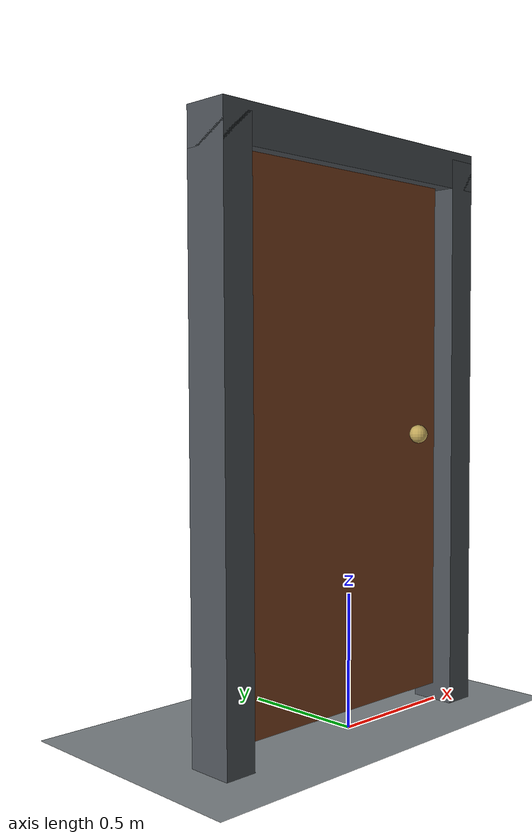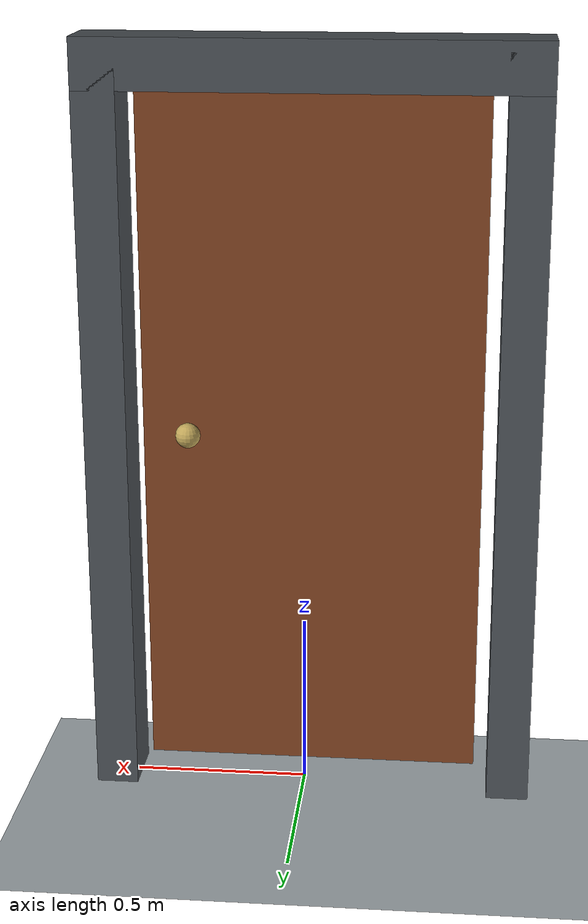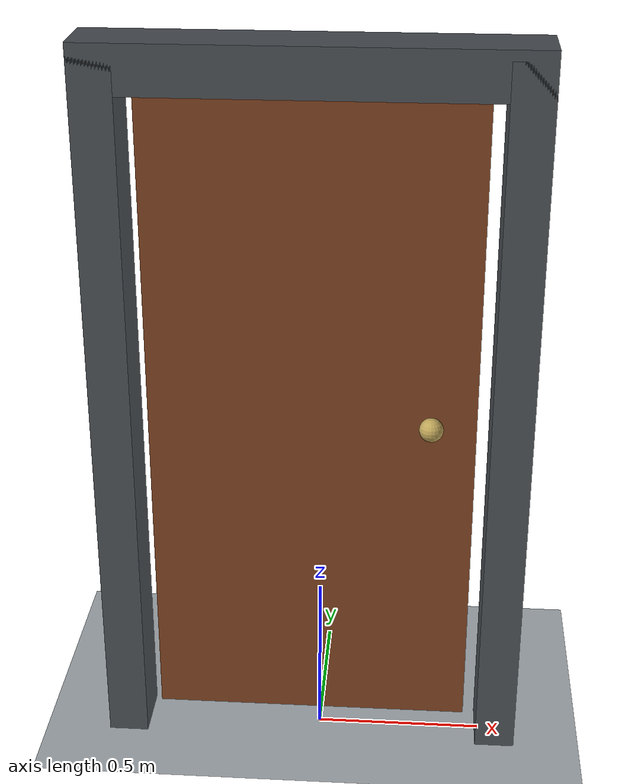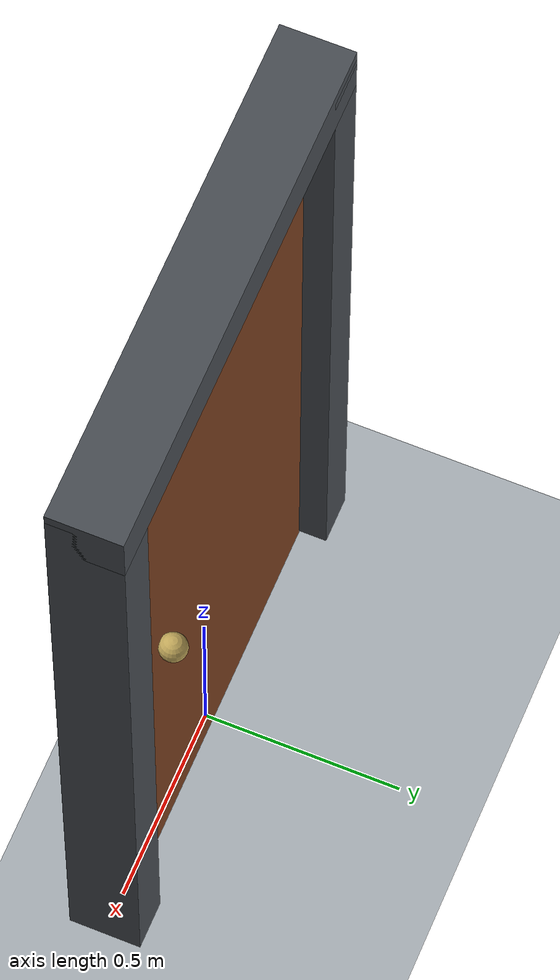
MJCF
<mujoco model="self_closing_door">
  <compiler angle="radian"/>
  <option timestep="0.002" gravity="0 0 -9.81" integrator="implicitfast"/>

  <visual>
    <headlight ambient="0.35 0.35 0.35" diffuse="0.7 0.7 0.7" specular="0.2 0.2 0.2"/>
  </visual>

  <worldbody>
    <light name="overhead" pos="0 -2 4" dir="0 0.4 -1"/>
    <camera name="overview" pos="3 -4 3" xyaxes="0.8 0.6 0 -0.3 0.4 0.866"/>
    <geom name="floor" type="plane" pos="0 0 0" size="5 5 0.1" rgba="0.65 0.68 0.70 1" friction="0.8 0.01 0.001"/>

    <body name="frame" pos="0 0 0">
      <geom name="hinge_post" type="box" pos="-0.60 0 1.07" size="0.06 0.09 1.07" rgba="0.28 0.30 0.32 1"/>
      <geom name="latch_post" type="box" pos="0.55 0 1.07" size="0.06 0.09 1.07" rgba="0.28 0.30 0.32 1"/>
      <geom name="header" type="box" pos="-0.025 0 2.10" size="0.635 0.09 0.07" rgba="0.28 0.30 0.32 1"/>
    </body>

    <body name="door" pos="-0.50 0 0.08">
      <!-- The closer's rest angle lies beyond the closed stop, so it keeps the door shut. -->
      <joint name="hinge" type="hinge" pos="0 0 0" axis="0 0 1" limited="true" range="0 1.5" stiffness="35" springref="-0.10" damping="14" armature="0.015" solreflimit="0.006 1" solimplimit="0.99 0.99 0.001"/>
      <geom name="door_panel" type="box" pos="0.475 0 0.975" size="0.475 0.035 0.975" mass="12" rgba="0.48 0.25 0.12 1" friction="0.7 0.01 0.001"/>
      <geom name="front_knob" type="sphere" pos="0.82 -0.065 1.00" size="0.035" mass="0.08" rgba="0.75 0.65 0.35 1"/>
      <geom name="back_knob" type="sphere" pos="0.82 0.065 1.00" size="0.035" mass="0.08" rgba="0.75 0.65 0.35 1"/>
    </body>
  </worldbody>

  <keyframe>
    <key name="start" qpos="1.25" qvel="0"/>
  </keyframe>
</mujoco>
